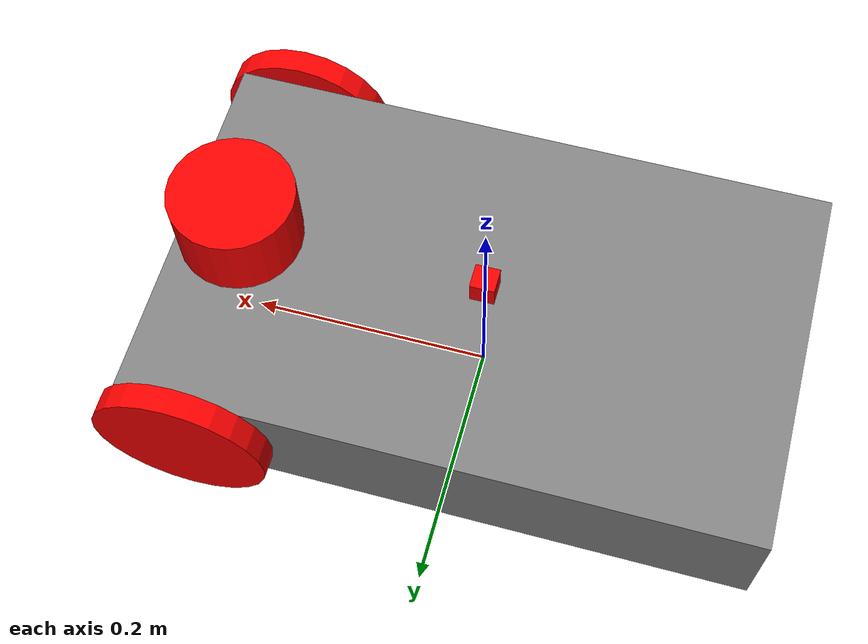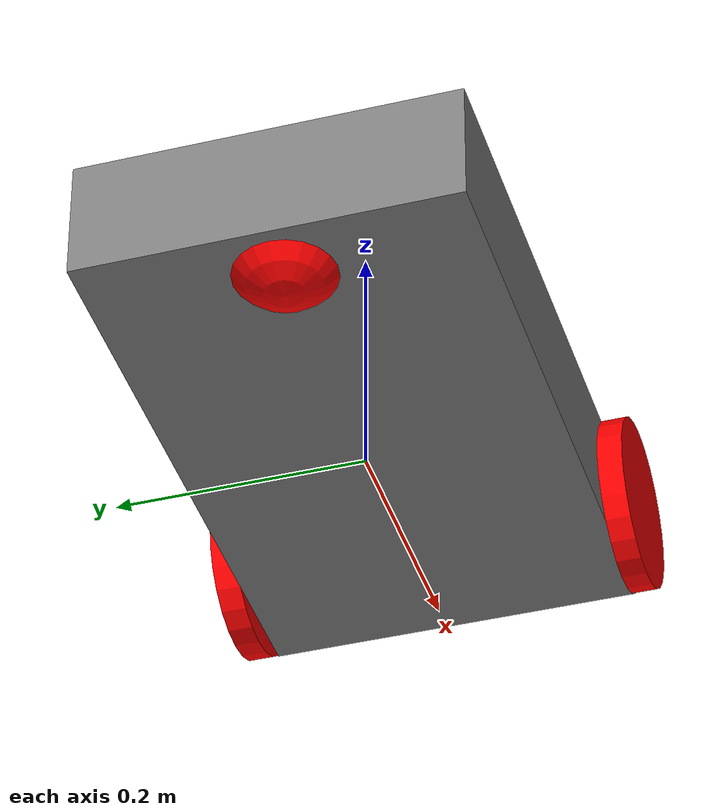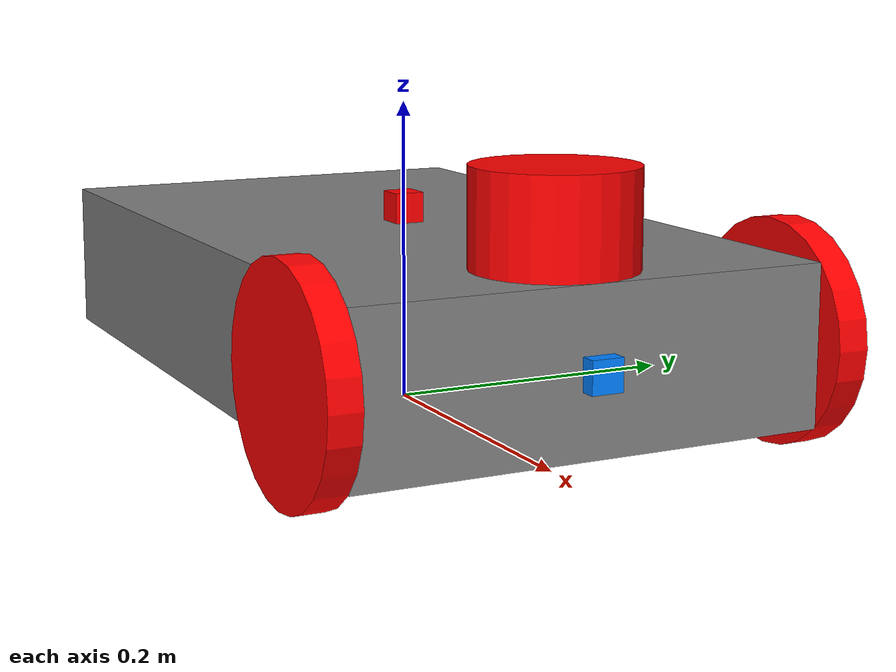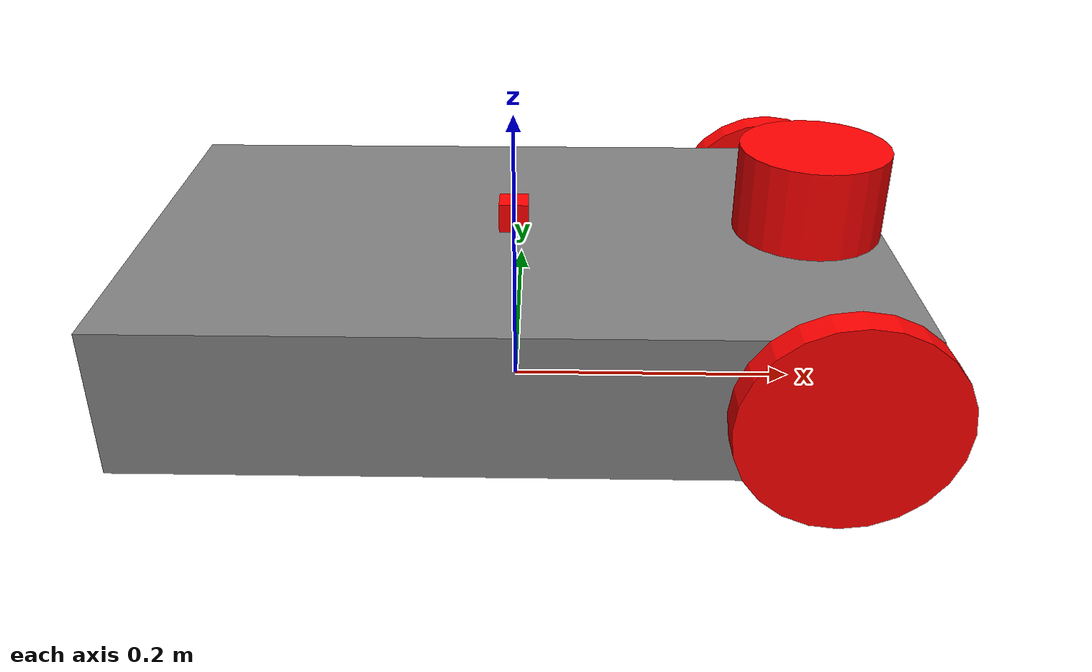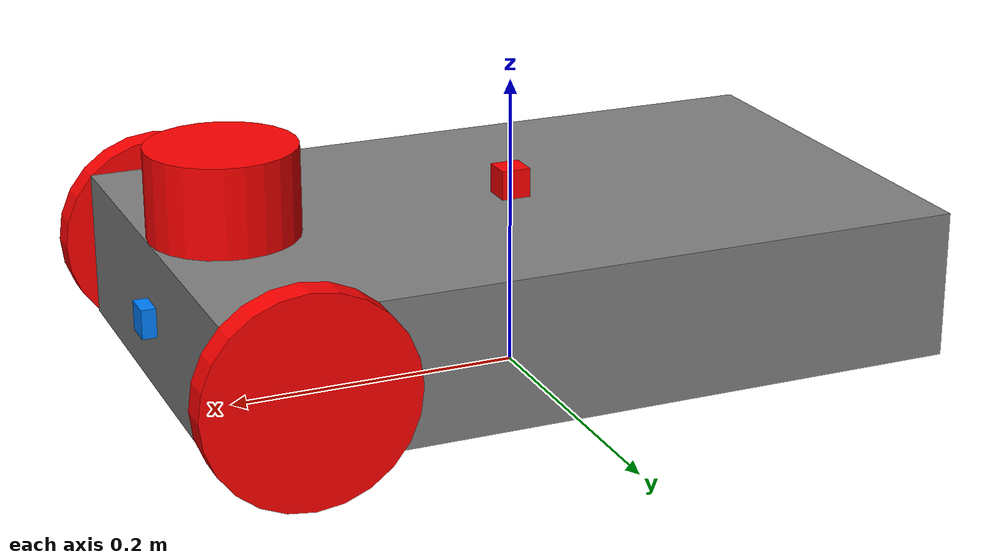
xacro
<?xml version="1.0"?>

<robot name="diffbot"
       xmlns:xacro="http://www.ros.org/wiki/xacro">

    <xacro:include filename="constants.xacro"/>
    <xacro:include filename="materials.xacro"/>

    <xacro:include filename="ros2_control.xacro"/>

    <xacro:include filename="base.xacro"/>
    <xacro:include filename="wheels.xacro"/>
    <xacro:include filename="sensors.xacro"/>

    <xacro:include filename="gazebo.xacro"/>

</robot>

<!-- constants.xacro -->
<robot xmlns:xacro="http://www.ros.org/wiki/xacro">

    <!-- Chassis -->
    <xacro:property name="chassis_length" value="0.5"/>
    <xacro:property name="chassis_width" value="0.3"/>
    <xacro:property name="chassis_height" value="0.1"/>
    <xacro:property name="chassis_mass" value="5.0"/>

    <!-- Wheels -->
    <xacro:property name="wheel_radius" value="0.07"/>
    <xacro:property name="wheel_width" value="0.02"/>
    <xacro:property name="wheel_mass" value="0.5"/>

    <xacro:property name="wheel_x" value="0.2"/>
    <xacro:property name="wheel_y" value="0.16"/>

    <!-- Caster -->
    <xacro:property name="caster_radius" value="0.05"/>
    <xacro:property name="caster_mass" value="0.2"/>

    <!-- Diff Drive -->
    <xacro:property name="wheel_separation" value="0.32"/>

</robot>

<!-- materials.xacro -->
<robot xmlns:xacro="http://www.ros.org/wiki/xacro">

    <material name="grey">
        <color rgba="0.5 0.5 0.5 1"/>
    </material>

    <material name="red">
        <color rgba="1 0 0 1"/>
    </material>

    <material name="blue">
        <color rgba="0 0.5 1 1"/>
    </material>

</robot>

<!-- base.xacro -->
<robot xmlns:xacro="http://www.ros.org/wiki/xacro">

    <link name="base_footprint"/>

    <joint name="base_footprint_joint" type="fixed">
        <parent link="base_footprint"/>
        <child link="base_link"/>
        <origin xyz="0 0 0.07"/>
    </joint>

    <link name="base_link"/>

    <link name="chassis">

        <visual>
            <geometry>
                <box size="${chassis_length} ${chassis_width} ${chassis_height}"/>
            </geometry>
            <material name="grey"/>
        </visual>

        <collision>
            <geometry>
                <box size="${chassis_length} ${chassis_width} ${chassis_height}"/>
            </geometry>
        </collision>

        <inertial>
            <mass value="${chassis_mass}"/>
            <origin xyz="0 0 0"/>
            <inertia
                ixx="0.042"
                ixy="0.0"
                ixz="0.0"
                iyy="0.11"
                iyz="0.0"
                izz="0.14"/>
        </inertial>

    </link>

    <joint name="base_to_chassis" type="fixed">
        <parent link="base_link"/>
        <child link="chassis"/>
    </joint>

</robot>

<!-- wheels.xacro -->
<robot xmlns:xacro="http://www.ros.org/wiki/xacro">

    <xacro:macro name="wheel"
                 params="name y_pos rpy axis">

        <link name="${name}">

            <visual>
                <geometry>
                    <cylinder radius="${wheel_radius}"
                              length="${wheel_width}"/>
                </geometry>
                <material name="red"/>
            </visual>

            <collision>
                <geometry>
                    <cylinder radius="${wheel_radius}"
                              length="${wheel_width}"/>
                </geometry>
            </collision>

            <inertial>
                <mass value="${wheel_mass}"/>
                <inertia
                    ixx="0.0006"
                    ixy="0.0"
                    ixz="0.0"
                    iyy="0.0006"
                    iyz="0.0"
                    izz="0.0012"/>
            </inertial>

        </link>

        <joint name="${name}_joint" type="continuous">
            <parent link="chassis"/>
            <child link="${name}"/>
            <origin xyz="${wheel_x} ${y_pos} 0"
                    rpy="${rpy}"/>
            <axis xyz="${axis}"/>
            <dynamics damping="0.2"
                      friction="0.1"/>
        </joint>

    </xacro:macro>

    <xacro:wheel
        name="left_wheel"
        y_pos="${wheel_y}"
        rpy="-1.57 0 0"
        axis="0 0 1"/>

    <xacro:wheel
        name="right_wheel"
        y_pos="-${wheel_y}"
        rpy="1.57 0 0"
        axis="0 0 -1"/>

    <link name="caster_wheel">

        <visual>
            <geometry>
                <sphere radius="${caster_radius}"/>
            </geometry>
            <material name="red"/>
        </visual>

        <collision>
            <geometry>
                <sphere radius="${caster_radius}"/>
            </geometry>
        </collision>

        <inertial>
            <mass value="${caster_mass}"/>
            <inertia
                ixx="0.0002"
                ixy="0.0"
                ixz="0.0"
                iyy="0.0002"
                iyz="0.0"
                izz="0.0002"/>
        </inertial>

    </link>

    <joint name="caster_joint" type="fixed">
        <parent link="chassis"/>
        <child link="caster_wheel"/>
        <origin xyz="-0.2 0 -0.02"/>
    </joint>

</robot>

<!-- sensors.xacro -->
<robot xmlns:xacro="http://www.ros.org/wiki/xacro">

    <link name="lidar_link">

        <visual>
            <geometry>
                <cylinder radius="0.05"
                          length="0.06"/>
            </geometry>
            <material name="red"/>
        </visual>

        <collision>
            <geometry>
                <cylinder radius="0.05"
                          length="0.06"/>
            </geometry>
        </collision>

        <inertial>
            <mass value="0.1"/>
            <inertia
                ixx="0.0001"
                ixy="0"
                ixz="0"
                iyy="0.0001"
                iyz="0"
                izz="0.0001"/>
        </inertial>

    </link>

    <joint name="lidar_joint" type="fixed">
        <parent link="chassis"/>
        <child link="lidar_link"/>
        <origin xyz="0.2 0 0.08"/>
    </joint>

    <!-- IMU -->
    <link name="imu_link">

        <visual>
            <geometry>
                <box size="0.02 0.02 0.02"/>
            </geometry>
            <material name="red"/>
        </visual>

        <collision>
            <geometry>
                <box size="0.02 0.02 0.02"/>
            </geometry>
        </collision>

        <inertial>
            <mass value="0.01"/>
            <inertia
                ixx="0.0001"
                ixy="0"
                ixz="0"
                iyy="0.0001"
                iyz="0"
                izz="0.0001"/>
        </inertial>

    </link>

    <joint name="imu_joint" type="fixed">
        <parent link="chassis"/>
        <child link="imu_link"/>
        <origin xyz="0 0 0.06"/>
    </joint>

    <!-- Camera -->
    <link name="camera_link">
        <visual>
            <geometry>
                <box size="0.02 0.02 0.02"/>
            </geometry>
            <material name="blue"/>
        </visual>

        <collision>
            <geometry>
                <box size="0.02 0.02 0.02"/>
            </geometry>
        </collision>

        <inertial>
            <mass value="0.01" />
            <inertia
                ixx="0.0001"
                ixy="0"
                ixz="0"
                iyy="0.0001"
                iyz="0"
                izz="0.0001"/>
        </inertial>
    </link>

    <joint name="camera_joint" type="fixed">
        <parent link="chassis"/>
        <child link="camera_link"/>
        <origin xyz="0.25 0 0"/>
    </joint>

</robot>
